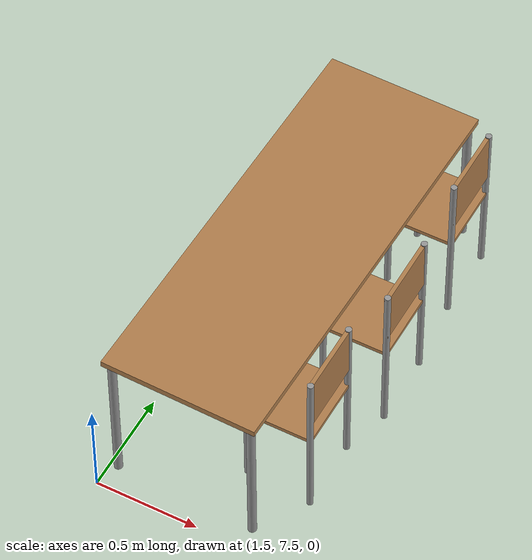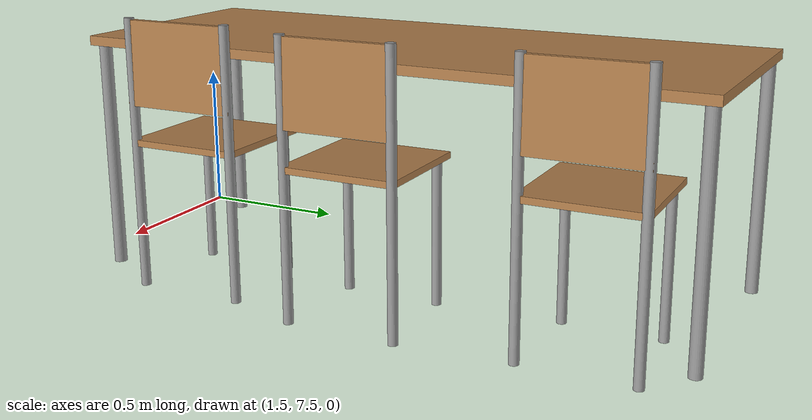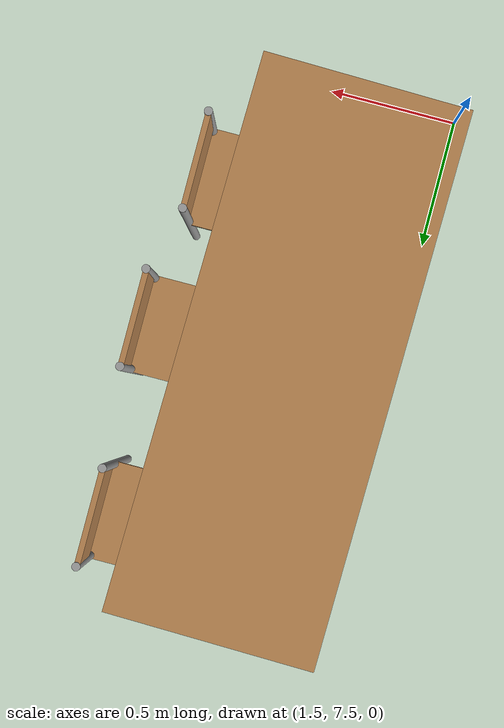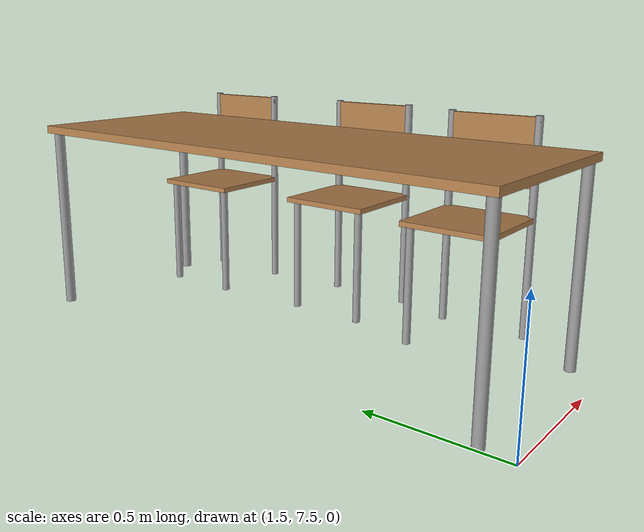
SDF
<sdf version="1.7">
 <world name="default">
  <model name="table_tavail_clone">
   <link name="link">
    <inertial>
     <mass>1</mass>
     <inertia><ixx>1</ixx><ixy>0</ixy><ixz>0</ixz><iyy>1</iyy><iyz>0</iyz><izz>1</izz></inertia>
    </inertial>
    <visual name="back_right_leg">
     <pose>-0.97 -0.34 0.5 0 -0 0</pose>
     <geometry><cylinder><radius>0.02</radius><length>0.75</length></cylinder></geometry>
     <material>
      <script><uri>file://media/materials/scripts/gazebo.material</uri><name>Gazebo/Grey</name></script>
      <shader type="pixel"><normal_map>__default__</normal_map></shader>
      <ambient>0.3 0.3 0.3 1</ambient>
      <diffuse>0.7 0.7 0.7 1</diffuse>
      <specular>0.01 0.01 0.01 1</specular>
      <emissive>0 0 0 1</emissive>
     </material>
    </visual>
    <visual name="front_right_leg">
     <pose>0.97 -0.34 0.5 0 -0 0</pose>
     <geometry><cylinder><radius>0.02</radius><length>0.75</length></cylinder></geometry>
     <material>
      <script><uri>file://media/materials/scripts/gazebo.material</uri><name>Gazebo/Grey</name></script>
      <shader type="pixel"><normal_map>__default__</normal_map></shader>
      <ambient>0.3 0.3 0.3 1</ambient>
      <diffuse>0.7 0.7 0.7 1</diffuse>
      <specular>0.01 0.01 0.01 1</specular>
      <emissive>0 0 0 1</emissive>
     </material>
    </visual>
    <visual name="back_left_leg">
     <pose>-0.97 0.34 0.5 0 -0 0</pose>
     <geometry><cylinder><radius>0.02</radius><length>0.75</length></cylinder></geometry>
     <material>
      <script><uri>file://media/materials/scripts/gazebo.material</uri><name>Gazebo/Grey</name></script>
      <shader type="pixel"><normal_map>__default__</normal_map></shader>
      <ambient>0.3 0.3 0.3 1</ambient>
      <diffuse>0.7 0.7 0.7 1</diffuse>
      <specular>0.01 0.01 0.01 1</specular>
      <emissive>0 0 0 1</emissive>
     </material>
    </visual>
    <visual name="front_left_leg">
     <pose>0.97 0.34 0.5 0 -0 0</pose>
     <geometry><cylinder><radius>0.02</radius><length>0.75</length></cylinder></geometry>
     <material>
      <script><uri>file://media/materials/scripts/gazebo.material</uri><name>Gazebo/Grey</name></script>
      <shader type="pixel"><normal_map>__default__</normal_map></shader>
      <ambient>0.3 0.3 0.3 1</ambient>
      <diffuse>0.7 0.7 0.7 1</diffuse>
      <specular>0.01 0.01 0.01 1</specular>
      <emissive>0 0 0 1</emissive>
     </material>
    </visual>
    <visual name="visual1">
     <pose>0 0 0.87 0 -0 0</pose>
     <geometry><box><size>2 0.75 0.03</size></box></geometry>
     <material>
      <script><uri>file://media/materials/scripts/gazebo.material</uri><name>Gazebo/Wood</name></script>
      <shader type="pixel"><normal_map>__default__</normal_map></shader>
      <ambient>1 1 1 1</ambient>
      <diffuse>1 1 1 1</diffuse>
      <specular>0.2 0.2 0.2 1</specular>
      <emissive>0 0 0 1</emissive>
     </material>
    </visual>
    <collision name="back_left_leg">
     <pose>-0.97 0.34 0.5 0 -0 0</pose>
     <geometry><cylinder><radius>0.02</radius><length>0.75</length></cylinder></geometry>
     <surface>
      <friction>
       <ode><mu>1</mu><mu2>1</mu2><fdir1>0 0 0</fdir1><slip1>0</slip1><slip2>0</slip2></ode>
       <torsional>
        <coefficient>1</coefficient>
        <patch_radius>0</patch_radius>
        <surface_radius>0</surface_radius>
        <use_patch_radius>1</use_patch_radius>
        <ode><slip>0</slip></ode>
       </torsional>
      </friction>
      <bounce><restitution_coefficient>0</restitution_coefficient><threshold>1e+06</threshold></bounce>
      <contact>
       <collide_without_contact>0</collide_without_contact>
       <collide_without_contact_bitmask>1</collide_without_contact_bitmask>
       <collide_bitmask>1</collide_bitmask>
       <ode>
        <soft_cfm>0</soft_cfm>
        <soft_erp>0.2</soft_erp>
        <kp>1e+13</kp>
        <kd>1</kd>
        <max_vel>0.01</max_vel>
        <min_depth>0</min_depth>
       </ode>
       <bullet>
        <split_impulse>1</split_impulse>
        <split_impulse_penetration_threshold>-0.01</split_impulse_penetration_threshold>
        <soft_cfm>0</soft_cfm>
        <soft_erp>0.2</soft_erp>
        <kp>1e+13</kp>
        <kd>1</kd>
       </bullet>
      </contact>
     </surface>
    </collision>
    <collision name="surface">
     <pose>0 0 0.87 0 -0 0</pose>
     <geometry><box><size>2 0.75 0.03</size></box></geometry>
     <surface>
      <friction>
       <ode><mu>0.6</mu><mu2>0.6</mu2><fdir1>0 0 0</fdir1><slip1>0</slip1><slip2>0</slip2></ode>
       <torsional>
        <coefficient>1</coefficient>
        <patch_radius>0</patch_radius>
        <surface_radius>0</surface_radius>
        <use_patch_radius>1</use_patch_radius>
        <ode><slip>0</slip></ode>
       </torsional>
      </friction>
      <bounce><restitution_coefficient>0</restitution_coefficient><threshold>1e+06</threshold></bounce>
      <contact>
       <collide_without_contact>0</collide_without_contact>
       <collide_without_contact_bitmask>1</collide_without_contact_bitmask>
       <collide_bitmask>1</collide_bitmask>
       <ode>
        <soft_cfm>0</soft_cfm>
        <soft_erp>0.2</soft_erp>
        <kp>1e+13</kp>
        <kd>1</kd>
        <max_vel>0.01</max_vel>
        <min_depth>0</min_depth>
       </ode>
       <bullet>
        <split_impulse>1</split_impulse>
        <split_impulse_penetration_threshold>-0.01</split_impulse_penetration_threshold>
        <soft_cfm>0</soft_cfm>
        <soft_erp>0.2</soft_erp>
        <kp>1e+13</kp>
        <kd>1</kd>
       </bullet>
      </contact>
     </surface>
    </collision>
    <collision name="back_right_leg">
     <pose>-0.97 -0.34 0.5 0 -0 0</pose>
     <geometry><cylinder><radius>0.02</radius><length>0.75</length></cylinder></geometry>
     <surface>
      <friction>
       <ode><mu>1</mu><mu2>1</mu2><fdir1>0 0 0</fdir1><slip1>0</slip1><slip2>0</slip2></ode>
       <torsional>
        <coefficient>1</coefficient>
        <patch_radius>0</patch_radius>
        <surface_radius>0</surface_radius>
        <use_patch_radius>1</use_patch_radius>
        <ode><slip>0</slip></ode>
       </torsional>
      </friction>
      <bounce><restitution_coefficient>0</restitution_coefficient><threshold>1e+06</threshold></bounce>
      <contact>
       <collide_without_contact>0</collide_without_contact>
       <collide_without_contact_bitmask>1</collide_without_contact_bitmask>
       <collide_bitmask>1</collide_bitmask>
       <ode>
        <soft_cfm>0</soft_cfm>
        <soft_erp>0.2</soft_erp>
        <kp>1e+13</kp>
        <kd>1</kd>
        <max_vel>0.01</max_vel>
        <min_depth>0</min_depth>
       </ode>
       <bullet>
        <split_impulse>1</split_impulse>
        <split_impulse_penetration_threshold>-0.01</split_impulse_penetration_threshold>
        <soft_cfm>0</soft_cfm>
        <soft_erp>0.2</soft_erp>
        <kp>1e+13</kp>
        <kd>1</kd>
       </bullet>
      </contact>
     </surface>
    </collision>
    <collision name="front_left_leg">
     <pose>0.97 0.34 0.5 0 -0 0</pose>
     <geometry><cylinder><radius>0.02</radius><length>0.75</length></cylinder></geometry>
     <surface>
      <friction>
       <ode><mu>1</mu><mu2>1</mu2><fdir1>0 0 0</fdir1><slip1>0</slip1><slip2>0</slip2></ode>
       <torsional>
        <coefficient>1</coefficient>
        <patch_radius>0</patch_radius>
        <surface_radius>0</surface_radius>
        <use_patch_radius>1</use_patch_radius>
        <ode><slip>0</slip></ode>
       </torsional>
      </friction>
      <bounce><restitution_coefficient>0</restitution_coefficient><threshold>1e+06</threshold></bounce>
      <contact>
       <collide_without_contact>0</collide_without_contact>
       <collide_without_contact_bitmask>1</collide_without_contact_bitmask>
       <collide_bitmask>1</collide_bitmask>
       <ode>
        <soft_cfm>0</soft_cfm>
        <soft_erp>0.2</soft_erp>
        <kp>1e+13</kp>
        <kd>1</kd>
        <max_vel>0.01</max_vel>
        <min_depth>0</min_depth>
       </ode>
       <bullet>
        <split_impulse>1</split_impulse>
        <split_impulse_penetration_threshold>-0.01</split_impulse_penetration_threshold>
        <soft_cfm>0</soft_cfm>
        <soft_erp>0.2</soft_erp>
        <kp>1e+13</kp>
        <kd>1</kd>
       </bullet>
      </contact>
     </surface>
    </collision>
    <collision name="front_right_leg">
     <pose>0.97 0.34 0.5 0 -0 0</pose>
     <geometry><cylinder><radius>0.02</radius><length>0.75</length></cylinder></geometry>
     <surface>
      <friction>
       <ode><mu>1</mu><mu2>1</mu2><fdir1>0 0 0</fdir1><slip1>0</slip1><slip2>0</slip2></ode>
       <torsional>
        <coefficient>1</coefficient>
        <patch_radius>0</patch_radius>
        <surface_radius>0</surface_radius>
        <use_patch_radius>1</use_patch_radius>
        <ode><slip>0</slip></ode>
       </torsional>
      </friction>
      <bounce><restitution_coefficient>0</restitution_coefficient><threshold>1e+06</threshold></bounce>
      <contact>
       <collide_without_contact>0</collide_without_contact>
       <collide_without_contact_bitmask>1</collide_without_contact_bitmask>
       <collide_bitmask>1</collide_bitmask>
       <ode>
        <soft_cfm>0</soft_cfm>
        <soft_erp>0.2</soft_erp>
        <kp>1e+13</kp>
        <kd>1</kd>
        <max_vel>0.01</max_vel>
        <min_depth>0</min_depth>
       </ode>
       <bullet>
        <split_impulse>1</split_impulse>
        <split_impulse_penetration_threshold>-0.01</split_impulse_penetration_threshold>
        <soft_cfm>0</soft_cfm>
        <soft_erp>0.2</soft_erp>
        <kp>1e+13</kp>
        <kd>1</kd>
       </bullet>
      </contact>
     </surface>
    </collision>
   </link>
   <static>1</static>
   <pose>1.89294 8.59211 -0.134214 0 -0 1.55</pose>
  </model>
  <model name="chair_mod_0_clone_5">
   <link name="link">
    <inertial>
     <mass>1</mass>
     <inertia><ixx>1</ixx><ixy>0</ixy><ixz>0</ixz><iyy>1</iyy><iyz>0</iyz><izz>1</izz></inertia>
    </inertial>
    <visual name="back_right_leg">
     <pose>-0.17 -0.17 0.42 0 -0 0</pose>
     <geometry><cylinder><radius>0.015</radius><length>0.84</length></cylinder></geometry>
     <material>
      <script><uri>file://media/materials/scripts/gazebo.material</uri><name>Gazebo/Grey</name></script>
      <shader type="pixel"><normal_map>__default__</normal_map></shader>
      <ambient>0.3 0.3 0.3 1</ambient>
      <diffuse>0.7 0.7 0.7 1</diffuse>
      <specular>0.01 0.01 0.01 1</specular>
      <emissive>0 0 0 1</emissive>
     </material>
    </visual>
    <visual name="back_left_leg">
     <pose>-0.15 0.15 0.23 0 -0 0</pose>
     <geometry><cylinder><radius>0.015</radius><length>0.46</length></cylinder></geometry>
     <material>
      <script><uri>file://media/materials/scripts/gazebo.material</uri><name>Gazebo/Grey</name></script>
      <shader type="pixel"><normal_map>__default__</normal_map></shader>
      <ambient>0.3 0.3 0.3 1</ambient>
      <diffuse>0.7 0.7 0.7 1</diffuse>
      <specular>0.01 0.01 0.01 1</specular>
      <emissive>0 0 0 1</emissive>
     </material>
    </visual>
    <visual name="visual1">
     <pose>0 0 0.46 0 -0 0</pose>
     <geometry><box><size>0.36 0.36 0.02</size></box></geometry>
     <material>
      <script><uri>file://media/materials/scripts/gazebo.material</uri><name>Gazebo/Wood</name></script>
      <shader type="pixel"><normal_map>__default__</normal_map></shader>
      <ambient>1 1 1 1</ambient>
      <diffuse>1 1 1 1</diffuse>
      <specular>0.2 0.2 0.2 1</specular>
      <emissive>0 0 0 1</emissive>
     </material>
    </visual>
    <visual name="ModelPreview_1::link::visual_5">
     <pose>0 -0.17 0.705 1.56 -0 0</pose>
     <geometry><box><size>0.36 0.26 0.02</size></box></geometry>
     <material>
      <script><uri>file://media/materials/scripts/gazebo.material</uri><name>Gazebo/Wood</name></script>
      <shader type="pixel"><normal_map>__default__</normal_map></shader>
      <ambient>1 1 1 1</ambient>
      <diffuse>1 1 1 1</diffuse>
      <specular>0.2 0.2 0.2 1</specular>
      <emissive>0 0 0 1</emissive>
     </material>
    </visual>
    <visual name="front_left_leg">
     <pose>0.15 0.15 0.23 0 -0 0</pose>
     <geometry><cylinder><radius>0.015</radius><length>0.46</length></cylinder></geometry>
     <material>
      <script><uri>file://media/materials/scripts/gazebo.material</uri><name>Gazebo/Grey</name></script>
      <shader type="pixel"><normal_map>__default__</normal_map></shader>
      <ambient>0.3 0.3 0.3 1</ambient>
      <diffuse>0.7 0.7 0.7 1</diffuse>
      <specular>0.01 0.01 0.01 1</specular>
      <emissive>0 0 0 1</emissive>
     </material>
    </visual>
    <visual name="front_right_leg">
     <pose>0.17 -0.17 0.42 0 -0 0</pose>
     <geometry><cylinder><radius>0.015</radius><length>0.84</length></cylinder></geometry>
     <material>
      <script><uri>file://media/materials/scripts/gazebo.material</uri><name>Gazebo/Grey</name></script>
      <shader type="pixel"><normal_map>__default__</normal_map></shader>
      <ambient>0.3 0.3 0.3 1</ambient>
      <diffuse>0.7 0.7 0.7 1</diffuse>
      <specular>0.01 0.01 0.01 1</specular>
      <emissive>0 0 0 1</emissive>
     </material>
    </visual>
    <collision name="front_right_leg">
     <pose>0.17 -0.17 0.42 0 -0 0</pose>
     <geometry><cylinder><radius>0.015</radius><length>0.84</length></cylinder></geometry>
     <surface>
      <friction>
       <ode><mu>1</mu><mu2>1</mu2><fdir1>0 0 0</fdir1><slip1>0</slip1><slip2>0</slip2></ode>
       <torsional>
        <coefficient>1</coefficient>
        <patch_radius>0</patch_radius>
        <surface_radius>0</surface_radius>
        <use_patch_radius>1</use_patch_radius>
        <ode><slip>0</slip></ode>
       </torsional>
      </friction>
      <bounce><restitution_coefficient>0</restitution_coefficient><threshold>1e+06</threshold></bounce>
      <contact>
       <collide_without_contact>0</collide_without_contact>
       <collide_without_contact_bitmask>1</collide_without_contact_bitmask>
       <collide_bitmask>1</collide_bitmask>
       <ode>
        <soft_cfm>0</soft_cfm>
        <soft_erp>0.2</soft_erp>
        <kp>1e+13</kp>
        <kd>1</kd>
        <max_vel>0.01</max_vel>
        <min_depth>0</min_depth>
       </ode>
       <bullet>
        <split_impulse>1</split_impulse>
        <split_impulse_penetration_threshold>-0.01</split_impulse_penetration_threshold>
        <soft_cfm>0</soft_cfm>
        <soft_erp>0.2</soft_erp>
        <kp>1e+13</kp>
        <kd>1</kd>
       </bullet>
      </contact>
     </surface>
    </collision>
    <collision name="back_right_leg">
     <pose>-0.17 -0.17 0.42 0 -0 0</pose>
     <geometry><cylinder><radius>0.015</radius><length>0.84</length></cylinder></geometry>
     <surface>
      <friction>
       <ode><mu>1</mu><mu2>1</mu2><fdir1>0 0 0</fdir1><slip1>0</slip1><slip2>0</slip2></ode>
       <torsional>
        <coefficient>1</coefficient>
        <patch_radius>0</patch_radius>
        <surface_radius>0</surface_radius>
        <use_patch_radius>1</use_patch_radius>
        <ode><slip>0</slip></ode>
       </torsional>
      </friction>
      <bounce><restitution_coefficient>0</restitution_coefficient><threshold>1e+06</threshold></bounce>
      <contact>
       <collide_without_contact>0</collide_without_contact>
       <collide_without_contact_bitmask>1</collide_without_contact_bitmask>
       <collide_bitmask>1</collide_bitmask>
       <ode>
        <soft_cfm>0</soft_cfm>
        <soft_erp>0.2</soft_erp>
        <kp>1e+13</kp>
        <kd>1</kd>
        <max_vel>0.01</max_vel>
        <min_depth>0</min_depth>
       </ode>
       <bullet>
        <split_impulse>1</split_impulse>
        <split_impulse_penetration_threshold>-0.01</split_impulse_penetration_threshold>
        <soft_cfm>0</soft_cfm>
        <soft_erp>0.2</soft_erp>
        <kp>1e+13</kp>
        <kd>1</kd>
       </bullet>
      </contact>
     </surface>
    </collision>
    <collision name="back_left_leg">
     <pose>-0.15 0.15 0.23 0 -0 0</pose>
     <geometry><cylinder><radius>0.015</radius><length>0.46</length></cylinder></geometry>
     <surface>
      <friction>
       <ode><mu>1</mu><mu2>1</mu2><fdir1>0 0 0</fdir1><slip1>0</slip1><slip2>0</slip2></ode>
       <torsional>
        <coefficient>1</coefficient>
        <patch_radius>0</patch_radius>
        <surface_radius>0</surface_radius>
        <use_patch_radius>1</use_patch_radius>
        <ode><slip>0</slip></ode>
       </torsional>
      </friction>
      <bounce><restitution_coefficient>0</restitution_coefficient><threshold>1e+06</threshold></bounce>
      <contact>
       <collide_without_contact>0</collide_without_contact>
       <collide_without_contact_bitmask>1</collide_without_contact_bitmask>
       <collide_bitmask>1</collide_bitmask>
       <ode>
        <soft_cfm>0</soft_cfm>
        <soft_erp>0.2</soft_erp>
        <kp>1e+13</kp>
        <kd>1</kd>
        <max_vel>0.01</max_vel>
        <min_depth>0</min_depth>
       </ode>
       <bullet>
        <split_impulse>1</split_impulse>
        <split_impulse_penetration_threshold>-0.01</split_impulse_penetration_threshold>
        <soft_cfm>0</soft_cfm>
        <soft_erp>0.2</soft_erp>
        <kp>1e+13</kp>
        <kd>1</kd>
       </bullet>
      </contact>
     </surface>
    </collision>
    <collision name="collision_6">
     <pose>0 -0.17 0.705 1.56 -0 0</pose>
     <geometry><box><size>0.36 0.26 0.03</size></box></geometry>
     <surface>
      <friction>
       <ode><mu>1</mu><mu2>1</mu2><fdir1>0 0 0</fdir1><slip1>0</slip1><slip2>0</slip2></ode>
       <torsional>
        <coefficient>1</coefficient>
        <patch_radius>0</patch_radius>
        <surface_radius>0</surface_radius>
        <use_patch_radius>1</use_patch_radius>
        <ode><slip>0</slip></ode>
       </torsional>
      </friction>
      <bounce><restitution_coefficient>0</restitution_coefficient><threshold>1e+06</threshold></bounce>
      <contact>
       <collide_without_contact>0</collide_without_contact>
       <collide_without_contact_bitmask>1</collide_without_contact_bitmask>
       <collide_bitmask>1</collide_bitmask>
       <ode>
        <soft_cfm>0</soft_cfm>
        <soft_erp>0.2</soft_erp>
        <kp>1e+13</kp>
        <kd>1</kd>
        <max_vel>0.01</max_vel>
        <min_depth>0</min_depth>
       </ode>
       <bullet>
        <split_impulse>1</split_impulse>
        <split_impulse_penetration_threshold>-0.01</split_impulse_penetration_threshold>
        <soft_cfm>0</soft_cfm>
        <soft_erp>0.2</soft_erp>
        <kp>1e+13</kp>
        <kd>1</kd>
       </bullet>
      </contact>
     </surface>
    </collision>
    <collision name="surface">
     <pose>0 0 0.46 0 -0 0</pose>
     <geometry><box><size>0.36 0.36 0.03</size></box></geometry>
     <surface>
      <friction>
       <ode><mu>0.6</mu><mu2>0.6</mu2><fdir1>0 0 0</fdir1><slip1>0</slip1><slip2>0</slip2></ode>
       <torsional>
        <coefficient>1</coefficient>
        <patch_radius>0</patch_radius>
        <surface_radius>0</surface_radius>
        <use_patch_radius>1</use_patch_radius>
        <ode><slip>0</slip></ode>
       </torsional>
      </friction>
      <bounce><restitution_coefficient>0</restitution_coefficient><threshold>1e+06</threshold></bounce>
      <contact>
       <collide_without_contact>0</collide_without_contact>
       <collide_without_contact_bitmask>1</collide_without_contact_bitmask>
       <collide_bitmask>1</collide_bitmask>
       <ode>
        <soft_cfm>0</soft_cfm>
        <soft_erp>0.2</soft_erp>
        <kp>1e+13</kp>
        <kd>1</kd>
        <max_vel>0.01</max_vel>
        <min_depth>0</min_depth>
       </ode>
       <bullet>
        <split_impulse>1</split_impulse>
        <split_impulse_penetration_threshold>-0.01</split_impulse_penetration_threshold>
        <soft_cfm>0</soft_cfm>
        <soft_erp>0.2</soft_erp>
        <kp>1e+13</kp>
        <kd>1</kd>
       </bullet>
      </contact>
     </surface>
    </collision>
    <collision name="front_left_leg">
     <pose>0.15 0.15 0.23 0 -0 0</pose>
     <geometry><cylinder><radius>0.015</radius><length>0.46</length></cylinder></geometry>
     <surface>
      <friction>
       <ode><mu>1</mu><mu2>1</mu2><fdir1>0 0 0</fdir1><slip1>0</slip1><slip2>0</slip2></ode>
       <torsional>
        <coefficient>1</coefficient>
        <patch_radius>0</patch_radius>
        <surface_radius>0</surface_radius>
        <use_patch_radius>1</use_patch_radius>
        <ode><slip>0</slip></ode>
       </torsional>
      </friction>
      <bounce><restitution_coefficient>0</restitution_coefficient><threshold>1e+06</threshold></bounce>
      <contact>
       <collide_without_contact>0</collide_without_contact>
       <collide_without_contact_bitmask>1</collide_without_contact_bitmask>
       <collide_bitmask>1</collide_bitmask>
       <ode>
        <soft_cfm>0</soft_cfm>
        <soft_erp>0.2</soft_erp>
        <kp>1e+13</kp>
        <kd>1</kd>
        <max_vel>0.01</max_vel>
        <min_depth>0</min_depth>
       </ode>
       <bullet>
        <split_impulse>1</split_impulse>
        <split_impulse_penetration_threshold>-0.01</split_impulse_penetration_threshold>
        <soft_cfm>0</soft_cfm>
        <soft_erp>0.2</soft_erp>
        <kp>1e+13</kp>
        <kd>1</kd>
       </bullet>
      </contact>
     </surface>
    </collision>
   </link>
   <static>1</static>
   <pose>2.19896 8.02095 0 0 -0 1.5708</pose>
  </model>
  <model name="chair_mod_0_clone_6">
   <link name="link">
    <inertial>
     <mass>1</mass>
     <inertia><ixx>1</ixx><ixy>0</ixy><ixz>0</ixz><iyy>1</iyy><iyz>0</iyz><izz>1</izz></inertia>
    </inertial>
    <visual name="back_right_leg">
     <pose>-0.17 -0.17 0.42 0 -0 0</pose>
     <geometry><cylinder><radius>0.015</radius><length>0.84</length></cylinder></geometry>
     <material>
      <script><uri>file://media/materials/scripts/gazebo.material</uri><name>Gazebo/Grey</name></script>
      <shader type="pixel"><normal_map>__default__</normal_map></shader>
      <ambient>0.3 0.3 0.3 1</ambient>
      <diffuse>0.7 0.7 0.7 1</diffuse>
      <specular>0.01 0.01 0.01 1</specular>
      <emissive>0 0 0 1</emissive>
     </material>
    </visual>
    <visual name="back_left_leg">
     <pose>-0.15 0.15 0.23 0 -0 0</pose>
     <geometry><cylinder><radius>0.015</radius><length>0.46</length></cylinder></geometry>
     <material>
      <script><uri>file://media/materials/scripts/gazebo.material</uri><name>Gazebo/Grey</name></script>
      <shader type="pixel"><normal_map>__default__</normal_map></shader>
      <ambient>0.3 0.3 0.3 1</ambient>
      <diffuse>0.7 0.7 0.7 1</diffuse>
      <specular>0.01 0.01 0.01 1</specular>
      <emissive>0 0 0 1</emissive>
     </material>
    </visual>
    <visual name="visual1">
     <pose>0 0 0.46 0 -0 0</pose>
     <geometry><box><size>0.36 0.36 0.02</size></box></geometry>
     <material>
      <script><uri>file://media/materials/scripts/gazebo.material</uri><name>Gazebo/Wood</name></script>
      <shader type="pixel"><normal_map>__default__</normal_map></shader>
      <ambient>1 1 1 1</ambient>
      <diffuse>1 1 1 1</diffuse>
      <specular>0.2 0.2 0.2 1</specular>
      <emissive>0 0 0 1</emissive>
     </material>
    </visual>
    <visual name="ModelPreview_1::link::visual_5">
     <pose>0 -0.17 0.705 1.56 -0 0</pose>
     <geometry><box><size>0.36 0.26 0.02</size></box></geometry>
     <material>
      <script><uri>file://media/materials/scripts/gazebo.material</uri><name>Gazebo/Wood</name></script>
      <shader type="pixel"><normal_map>__default__</normal_map></shader>
      <ambient>1 1 1 1</ambient>
      <diffuse>1 1 1 1</diffuse>
      <specular>0.2 0.2 0.2 1</specular>
      <emissive>0 0 0 1</emissive>
     </material>
    </visual>
    <visual name="front_left_leg">
     <pose>0.15 0.15 0.23 0 -0 0</pose>
     <geometry><cylinder><radius>0.015</radius><length>0.46</length></cylinder></geometry>
     <material>
      <script><uri>file://media/materials/scripts/gazebo.material</uri><name>Gazebo/Grey</name></script>
      <shader type="pixel"><normal_map>__default__</normal_map></shader>
      <ambient>0.3 0.3 0.3 1</ambient>
      <diffuse>0.7 0.7 0.7 1</diffuse>
      <specular>0.01 0.01 0.01 1</specular>
      <emissive>0 0 0 1</emissive>
     </material>
    </visual>
    <visual name="front_right_leg">
     <pose>0.17 -0.17 0.42 0 -0 0</pose>
     <geometry><cylinder><radius>0.015</radius><length>0.84</length></cylinder></geometry>
     <material>
      <script><uri>file://media/materials/scripts/gazebo.material</uri><name>Gazebo/Grey</name></script>
      <shader type="pixel"><normal_map>__default__</normal_map></shader>
      <ambient>0.3 0.3 0.3 1</ambient>
      <diffuse>0.7 0.7 0.7 1</diffuse>
      <specular>0.01 0.01 0.01 1</specular>
      <emissive>0 0 0 1</emissive>
     </material>
    </visual>
    <collision name="front_right_leg">
     <pose>0.17 -0.17 0.42 0 -0 0</pose>
     <geometry><cylinder><radius>0.015</radius><length>0.84</length></cylinder></geometry>
     <surface>
      <friction>
       <ode><mu>1</mu><mu2>1</mu2><fdir1>0 0 0</fdir1><slip1>0</slip1><slip2>0</slip2></ode>
       <torsional>
        <coefficient>1</coefficient>
        <patch_radius>0</patch_radius>
        <surface_radius>0</surface_radius>
        <use_patch_radius>1</use_patch_radius>
        <ode><slip>0</slip></ode>
       </torsional>
      </friction>
      <bounce><restitution_coefficient>0</restitution_coefficient><threshold>1e+06</threshold></bounce>
      <contact>
       <collide_without_contact>0</collide_without_contact>
       <collide_without_contact_bitmask>1</collide_without_contact_bitmask>
       <collide_bitmask>1</collide_bitmask>
       <ode>
        <soft_cfm>0</soft_cfm>
        <soft_erp>0.2</soft_erp>
        <kp>1e+13</kp>
        <kd>1</kd>
        <max_vel>0.01</max_vel>
        <min_depth>0</min_depth>
       </ode>
       <bullet>
        <split_impulse>1</split_impulse>
        <split_impulse_penetration_threshold>-0.01</split_impulse_penetration_threshold>
        <soft_cfm>0</soft_cfm>
        <soft_erp>0.2</soft_erp>
        <kp>1e+13</kp>
        <kd>1</kd>
       </bullet>
      </contact>
     </surface>
    </collision>
    <collision name="back_right_leg">
     <pose>-0.17 -0.17 0.42 0 -0 0</pose>
     <geometry><cylinder><radius>0.015</radius><length>0.84</length></cylinder></geometry>
     <surface>
      <friction>
       <ode><mu>1</mu><mu2>1</mu2><fdir1>0 0 0</fdir1><slip1>0</slip1><slip2>0</slip2></ode>
       <torsional>
        <coefficient>1</coefficient>
        <patch_radius>0</patch_radius>
        <surface_radius>0</surface_radius>
        <use_patch_radius>1</use_patch_radius>
        <ode><slip>0</slip></ode>
       </torsional>
      </friction>
      <bounce><restitution_coefficient>0</restitution_coefficient><threshold>1e+06</threshold></bounce>
      <contact>
       <collide_without_contact>0</collide_without_contact>
       <collide_without_contact_bitmask>1</collide_without_contact_bitmask>
       <collide_bitmask>1</collide_bitmask>
       <ode>
        <soft_cfm>0</soft_cfm>
        <soft_erp>0.2</soft_erp>
        <kp>1e+13</kp>
        <kd>1</kd>
        <max_vel>0.01</max_vel>
        <min_depth>0</min_depth>
       </ode>
       <bullet>
        <split_impulse>1</split_impulse>
        <split_impulse_penetration_threshold>-0.01</split_impulse_penetration_threshold>
        <soft_cfm>0</soft_cfm>
        <soft_erp>0.2</soft_erp>
        <kp>1e+13</kp>
        <kd>1</kd>
       </bullet>
      </contact>
     </surface>
    </collision>
    <collision name="back_left_leg">
     <pose>-0.15 0.15 0.23 0 -0 0</pose>
     <geometry><cylinder><radius>0.015</radius><length>0.46</length></cylinder></geometry>
     <surface>
      <friction>
       <ode><mu>1</mu><mu2>1</mu2><fdir1>0 0 0</fdir1><slip1>0</slip1><slip2>0</slip2></ode>
       <torsional>
        <coefficient>1</coefficient>
        <patch_radius>0</patch_radius>
        <surface_radius>0</surface_radius>
        <use_patch_radius>1</use_patch_radius>
        <ode><slip>0</slip></ode>
       </torsional>
      </friction>
      <bounce><restitution_coefficient>0</restitution_coefficient><threshold>1e+06</threshold></bounce>
      <contact>
       <collide_without_contact>0</collide_without_contact>
       <collide_without_contact_bitmask>1</collide_without_contact_bitmask>
       <collide_bitmask>1</collide_bitmask>
       <ode>
        <soft_cfm>0</soft_cfm>
        <soft_erp>0.2</soft_erp>
        <kp>1e+13</kp>
        <kd>1</kd>
        <max_vel>0.01</max_vel>
        <min_depth>0</min_depth>
       </ode>
       <bullet>
        <split_impulse>1</split_impulse>
        <split_impulse_penetration_threshold>-0.01</split_impulse_penetration_threshold>
        <soft_cfm>0</soft_cfm>
        <soft_erp>0.2</soft_erp>
        <kp>1e+13</kp>
        <kd>1</kd>
       </bullet>
      </contact>
     </surface>
    </collision>
    <collision name="collision_6">
     <pose>0 -0.17 0.705 1.56 -0 0</pose>
     <geometry><box><size>0.36 0.26 0.03</size></box></geometry>
     <surface>
      <friction>
       <ode><mu>1</mu><mu2>1</mu2><fdir1>0 0 0</fdir1><slip1>0</slip1><slip2>0</slip2></ode>
       <torsional>
        <coefficient>1</coefficient>
        <patch_radius>0</patch_radius>
        <surface_radius>0</surface_radius>
        <use_patch_radius>1</use_patch_radius>
        <ode><slip>0</slip></ode>
       </torsional>
      </friction>
      <bounce><restitution_coefficient>0</restitution_coefficient><threshold>1e+06</threshold></bounce>
      <contact>
       <collide_without_contact>0</collide_without_contact>
       <collide_without_contact_bitmask>1</collide_without_contact_bitmask>
       <collide_bitmask>1</collide_bitmask>
       <ode>
        <soft_cfm>0</soft_cfm>
        <soft_erp>0.2</soft_erp>
        <kp>1e+13</kp>
        <kd>1</kd>
        <max_vel>0.01</max_vel>
        <min_depth>0</min_depth>
       </ode>
       <bullet>
        <split_impulse>1</split_impulse>
        <split_impulse_penetration_threshold>-0.01</split_impulse_penetration_threshold>
        <soft_cfm>0</soft_cfm>
        <soft_erp>0.2</soft_erp>
        <kp>1e+13</kp>
        <kd>1</kd>
       </bullet>
      </contact>
     </surface>
    </collision>
    <collision name="surface">
     <pose>0 0 0.46 0 -0 0</pose>
     <geometry><box><size>0.36 0.36 0.03</size></box></geometry>
     <surface>
      <friction>
       <ode><mu>0.6</mu><mu2>0.6</mu2><fdir1>0 0 0</fdir1><slip1>0</slip1><slip2>0</slip2></ode>
       <torsional>
        <coefficient>1</coefficient>
        <patch_radius>0</patch_radius>
        <surface_radius>0</surface_radius>
        <use_patch_radius>1</use_patch_radius>
        <ode><slip>0</slip></ode>
       </torsional>
      </friction>
      <bounce><restitution_coefficient>0</restitution_coefficient><threshold>1e+06</threshold></bounce>
      <contact>
       <collide_without_contact>0</collide_without_contact>
       <collide_without_contact_bitmask>1</collide_without_contact_bitmask>
       <collide_bitmask>1</collide_bitmask>
       <ode>
        <soft_cfm>0</soft_cfm>
        <soft_erp>0.2</soft_erp>
        <kp>1e+13</kp>
        <kd>1</kd>
        <max_vel>0.01</max_vel>
        <min_depth>0</min_depth>
       </ode>
       <bullet>
        <split_impulse>1</split_impulse>
        <split_impulse_penetration_threshold>-0.01</split_impulse_penetration_threshold>
        <soft_cfm>0</soft_cfm>
        <soft_erp>0.2</soft_erp>
        <kp>1e+13</kp>
        <kd>1</kd>
       </bullet>
      </contact>
     </surface>
    </collision>
    <collision name="front_left_leg">
     <pose>0.15 0.15 0.23 0 -0 0</pose>
     <geometry><cylinder><radius>0.015</radius><length>0.46</length></cylinder></geometry>
     <surface>
      <friction>
       <ode><mu>1</mu><mu2>1</mu2><fdir1>0 0 0</fdir1><slip1>0</slip1><slip2>0</slip2></ode>
       <torsional>
        <coefficient>1</coefficient>
        <patch_radius>0</patch_radius>
        <surface_radius>0</surface_radius>
        <use_patch_radius>1</use_patch_radius>
        <ode><slip>0</slip></ode>
       </torsional>
      </friction>
      <bounce><restitution_coefficient>0</restitution_coefficient><threshold>1e+06</threshold></bounce>
      <contact>
       <collide_without_contact>0</collide_without_contact>
       <collide_without_contact_bitmask>1</collide_without_contact_bitmask>
       <collide_bitmask>1</collide_bitmask>
       <ode>
        <soft_cfm>0</soft_cfm>
        <soft_erp>0.2</soft_erp>
        <kp>1e+13</kp>
        <kd>1</kd>
        <max_vel>0.01</max_vel>
        <min_depth>0</min_depth>
       </ode>
       <bullet>
        <split_impulse>1</split_impulse>
        <split_impulse_penetration_threshold>-0.01</split_impulse_penetration_threshold>
        <soft_cfm>0</soft_cfm>
        <soft_erp>0.2</soft_erp>
        <kp>1e+13</kp>
        <kd>1</kd>
       </bullet>
      </contact>
     </surface>
    </collision>
   </link>
   <static>1</static>
   <pose>2.2654 8.59088 0 0 -0 1.5708</pose>
  </model>
  <model name="chair_mod_0_clone_7">
   <link name="link">
    <inertial>
     <mass>1</mass>
     <inertia><ixx>1</ixx><ixy>0</ixy><ixz>0</ixz><iyy>1</iyy><iyz>0</iyz><izz>1</izz></inertia>
    </inertial>
    <visual name="back_right_leg">
     <pose>-0.17 -0.17 0.42 0 -0 0</pose>
     <geometry><cylinder><radius>0.015</radius><length>0.84</length></cylinder></geometry>
     <material>
      <script><uri>file://media/materials/scripts/gazebo.material</uri><name>Gazebo/Grey</name></script>
      <shader type="pixel"><normal_map>__default__</normal_map></shader>
      <ambient>0.3 0.3 0.3 1</ambient>
      <diffuse>0.7 0.7 0.7 1</diffuse>
      <specular>0.01 0.01 0.01 1</specular>
      <emissive>0 0 0 1</emissive>
     </material>
    </visual>
    <visual name="back_left_leg">
     <pose>-0.15 0.15 0.23 0 -0 0</pose>
     <geometry><cylinder><radius>0.015</radius><length>0.46</length></cylinder></geometry>
     <material>
      <script><uri>file://media/materials/scripts/gazebo.material</uri><name>Gazebo/Grey</name></script>
      <shader type="pixel"><normal_map>__default__</normal_map></shader>
      <ambient>0.3 0.3 0.3 1</ambient>
      <diffuse>0.7 0.7 0.7 1</diffuse>
      <specular>0.01 0.01 0.01 1</specular>
      <emissive>0 0 0 1</emissive>
     </material>
    </visual>
    <visual name="visual1">
     <pose>0 0 0.46 0 -0 0</pose>
     <geometry><box><size>0.36 0.36 0.02</size></box></geometry>
     <material>
      <script><uri>file://media/materials/scripts/gazebo.material</uri><name>Gazebo/Wood</name></script>
      <shader type="pixel"><normal_map>__default__</normal_map></shader>
      <ambient>1 1 1 1</ambient>
      <diffuse>1 1 1 1</diffuse>
      <specular>0.2 0.2 0.2 1</specular>
      <emissive>0 0 0 1</emissive>
     </material>
    </visual>
    <visual name="ModelPreview_1::link::visual_5">
     <pose>0 -0.17 0.705 1.56 -0 0</pose>
     <geometry><box><size>0.36 0.26 0.02</size></box></geometry>
     <material>
      <script><uri>file://media/materials/scripts/gazebo.material</uri><name>Gazebo/Wood</name></script>
      <shader type="pixel"><normal_map>__default__</normal_map></shader>
      <ambient>1 1 1 1</ambient>
      <diffuse>1 1 1 1</diffuse>
      <specular>0.2 0.2 0.2 1</specular>
      <emissive>0 0 0 1</emissive>
     </material>
    </visual>
    <visual name="front_left_leg">
     <pose>0.15 0.15 0.23 0 -0 0</pose>
     <geometry><cylinder><radius>0.015</radius><length>0.46</length></cylinder></geometry>
     <material>
      <script><uri>file://media/materials/scripts/gazebo.material</uri><name>Gazebo/Grey</name></script>
      <shader type="pixel"><normal_map>__default__</normal_map></shader>
      <ambient>0.3 0.3 0.3 1</ambient>
      <diffuse>0.7 0.7 0.7 1</diffuse>
      <specular>0.01 0.01 0.01 1</specular>
      <emissive>0 0 0 1</emissive>
     </material>
    </visual>
    <visual name="front_right_leg">
     <pose>0.17 -0.17 0.42 0 -0 0</pose>
     <geometry><cylinder><radius>0.015</radius><length>0.84</length></cylinder></geometry>
     <material>
      <script><uri>file://media/materials/scripts/gazebo.material</uri><name>Gazebo/Grey</name></script>
      <shader type="pixel"><normal_map>__default__</normal_map></shader>
      <ambient>0.3 0.3 0.3 1</ambient>
      <diffuse>0.7 0.7 0.7 1</diffuse>
      <specular>0.01 0.01 0.01 1</specular>
      <emissive>0 0 0 1</emissive>
     </material>
    </visual>
    <collision name="front_right_leg">
     <pose>0.17 -0.17 0.42 0 -0 0</pose>
     <geometry><cylinder><radius>0.015</radius><length>0.84</length></cylinder></geometry>
     <surface>
      <friction>
       <ode><mu>1</mu><mu2>1</mu2><fdir1>0 0 0</fdir1><slip1>0</slip1><slip2>0</slip2></ode>
       <torsional>
        <coefficient>1</coefficient>
        <patch_radius>0</patch_radius>
        <surface_radius>0</surface_radius>
        <use_patch_radius>1</use_patch_radius>
        <ode><slip>0</slip></ode>
       </torsional>
      </friction>
      <bounce><restitution_coefficient>0</restitution_coefficient><threshold>1e+06</threshold></bounce>
      <contact>
       <collide_without_contact>0</collide_without_contact>
       <collide_without_contact_bitmask>1</collide_without_contact_bitmask>
       <collide_bitmask>1</collide_bitmask>
       <ode>
        <soft_cfm>0</soft_cfm>
        <soft_erp>0.2</soft_erp>
        <kp>1e+13</kp>
        <kd>1</kd>
        <max_vel>0.01</max_vel>
        <min_depth>0</min_depth>
       </ode>
       <bullet>
        <split_impulse>1</split_impulse>
        <split_impulse_penetration_threshold>-0.01</split_impulse_penetration_threshold>
        <soft_cfm>0</soft_cfm>
        <soft_erp>0.2</soft_erp>
        <kp>1e+13</kp>
        <kd>1</kd>
       </bullet>
      </contact>
     </surface>
    </collision>
    <collision name="back_right_leg">
     <pose>-0.17 -0.17 0.42 0 -0 0</pose>
     <geometry><cylinder><radius>0.015</radius><length>0.84</length></cylinder></geometry>
     <surface>
      <friction>
       <ode><mu>1</mu><mu2>1</mu2><fdir1>0 0 0</fdir1><slip1>0</slip1><slip2>0</slip2></ode>
       <torsional>
        <coefficient>1</coefficient>
        <patch_radius>0</patch_radius>
        <surface_radius>0</surface_radius>
        <use_patch_radius>1</use_patch_radius>
        <ode><slip>0</slip></ode>
       </torsional>
      </friction>
      <bounce><restitution_coefficient>0</restitution_coefficient><threshold>1e+06</threshold></bounce>
      <contact>
       <collide_without_contact>0</collide_without_contact>
       <collide_without_contact_bitmask>1</collide_without_contact_bitmask>
       <collide_bitmask>1</collide_bitmask>
       <ode>
        <soft_cfm>0</soft_cfm>
        <soft_erp>0.2</soft_erp>
        <kp>1e+13</kp>
        <kd>1</kd>
        <max_vel>0.01</max_vel>
        <min_depth>0</min_depth>
       </ode>
       <bullet>
        <split_impulse>1</split_impulse>
        <split_impulse_penetration_threshold>-0.01</split_impulse_penetration_threshold>
        <soft_cfm>0</soft_cfm>
        <soft_erp>0.2</soft_erp>
        <kp>1e+13</kp>
        <kd>1</kd>
       </bullet>
      </contact>
     </surface>
    </collision>
    <collision name="back_left_leg">
     <pose>-0.15 0.15 0.23 0 -0 0</pose>
     <geometry><cylinder><radius>0.015</radius><length>0.46</length></cylinder></geometry>
     <surface>
      <friction>
       <ode><mu>1</mu><mu2>1</mu2><fdir1>0 0 0</fdir1><slip1>0</slip1><slip2>0</slip2></ode>
       <torsional>
        <coefficient>1</coefficient>
        <patch_radius>0</patch_radius>
        <surface_radius>0</surface_radius>
        <use_patch_radius>1</use_patch_radius>
        <ode><slip>0</slip></ode>
       </torsional>
      </friction>
      <bounce><restitution_coefficient>0</restitution_coefficient><threshold>1e+06</threshold></bounce>
      <contact>
       <collide_without_contact>0</collide_without_contact>
       <collide_without_contact_bitmask>1</collide_without_contact_bitmask>
       <collide_bitmask>1</collide_bitmask>
       <ode>
        <soft_cfm>0</soft_cfm>
        <soft_erp>0.2</soft_erp>
        <kp>1e+13</kp>
        <kd>1</kd>
        <max_vel>0.01</max_vel>
        <min_depth>0</min_depth>
       </ode>
       <bullet>
        <split_impulse>1</split_impulse>
        <split_impulse_penetration_threshold>-0.01</split_impulse_penetration_threshold>
        <soft_cfm>0</soft_cfm>
        <soft_erp>0.2</soft_erp>
        <kp>1e+13</kp>
        <kd>1</kd>
       </bullet>
      </contact>
     </surface>
    </collision>
    <collision name="collision_6">
     <pose>0 -0.17 0.705 1.56 -0 0</pose>
     <geometry><box><size>0.36 0.26 0.03</size></box></geometry>
     <surface>
      <friction>
       <ode><mu>1</mu><mu2>1</mu2><fdir1>0 0 0</fdir1><slip1>0</slip1><slip2>0</slip2></ode>
       <torsional>
        <coefficient>1</coefficient>
        <patch_radius>0</patch_radius>
        <surface_radius>0</surface_radius>
        <use_patch_radius>1</use_patch_radius>
        <ode><slip>0</slip></ode>
       </torsional>
      </friction>
      <bounce><restitution_coefficient>0</restitution_coefficient><threshold>1e+06</threshold></bounce>
      <contact>
       <collide_without_contact>0</collide_without_contact>
       <collide_without_contact_bitmask>1</collide_without_contact_bitmask>
       <collide_bitmask>1</collide_bitmask>
       <ode>
        <soft_cfm>0</soft_cfm>
        <soft_erp>0.2</soft_erp>
        <kp>1e+13</kp>
        <kd>1</kd>
        <max_vel>0.01</max_vel>
        <min_depth>0</min_depth>
       </ode>
       <bullet>
        <split_impulse>1</split_impulse>
        <split_impulse_penetration_threshold>-0.01</split_impulse_penetration_threshold>
        <soft_cfm>0</soft_cfm>
        <soft_erp>0.2</soft_erp>
        <kp>1e+13</kp>
        <kd>1</kd>
       </bullet>
      </contact>
     </surface>
    </collision>
    <collision name="surface">
     <pose>0 0 0.46 0 -0 0</pose>
     <geometry><box><size>0.36 0.36 0.03</size></box></geometry>
     <surface>
      <friction>
       <ode><mu>0.6</mu><mu2>0.6</mu2><fdir1>0 0 0</fdir1><slip1>0</slip1><slip2>0</slip2></ode>
       <torsional>
        <coefficient>1</coefficient>
        <patch_radius>0</patch_radius>
        <surface_radius>0</surface_radius>
        <use_patch_radius>1</use_patch_radius>
        <ode><slip>0</slip></ode>
       </torsional>
      </friction>
      <bounce><restitution_coefficient>0</restitution_coefficient><threshold>1e+06</threshold></bounce>
      <contact>
       <collide_without_contact>0</collide_without_contact>
       <collide_without_contact_bitmask>1</collide_without_contact_bitmask>
       <collide_bitmask>1</collide_bitmask>
       <ode>
        <soft_cfm>0</soft_cfm>
        <soft_erp>0.2</soft_erp>
        <kp>1e+13</kp>
        <kd>1</kd>
        <max_vel>0.01</max_vel>
        <min_depth>0</min_depth>
       </ode>
       <bullet>
        <split_impulse>1</split_impulse>
        <split_impulse_penetration_threshold>-0.01</split_impulse_penetration_threshold>
        <soft_cfm>0</soft_cfm>
        <soft_erp>0.2</soft_erp>
        <kp>1e+13</kp>
        <kd>1</kd>
       </bullet>
      </contact>
     </surface>
    </collision>
    <collision name="front_left_leg">
     <pose>0.15 0.15 0.23 0 -0 0</pose>
     <geometry><cylinder><radius>0.015</radius><length>0.46</length></cylinder></geometry>
     <surface>
      <friction>
       <ode><mu>1</mu><mu2>1</mu2><fdir1>0 0 0</fdir1><slip1>0</slip1><slip2>0</slip2></ode>
       <torsional>
        <coefficient>1</coefficient>
        <patch_radius>0</patch_radius>
        <surface_radius>0</surface_radius>
        <use_patch_radius>1</use_patch_radius>
        <ode><slip>0</slip></ode>
       </torsional>
      </friction>
      <bounce><restitution_coefficient>0</restitution_coefficient><threshold>1e+06</threshold></bounce>
      <contact>
       <collide_without_contact>0</collide_without_contact>
       <collide_without_contact_bitmask>1</collide_without_contact_bitmask>
       <collide_bitmask>1</collide_bitmask>
       <ode>
        <soft_cfm>0</soft_cfm>
        <soft_erp>0.2</soft_erp>
        <kp>1e+13</kp>
        <kd>1</kd>
        <max_vel>0.01</max_vel>
        <min_depth>0</min_depth>
       </ode>
       <bullet>
        <split_impulse>1</split_impulse>
        <split_impulse_penetration_threshold>-0.01</split_impulse_penetration_threshold>
        <soft_cfm>0</soft_cfm>
        <soft_erp>0.2</soft_erp>
        <kp>1e+13</kp>
        <kd>1</kd>
       </bullet>
      </contact>
     </surface>
    </collision>
   </link>
   <static>1</static>
   <pose>2.23411 9.27655 0 0 -0 1.5708</pose>
  </model>
 </world>
</sdf>
